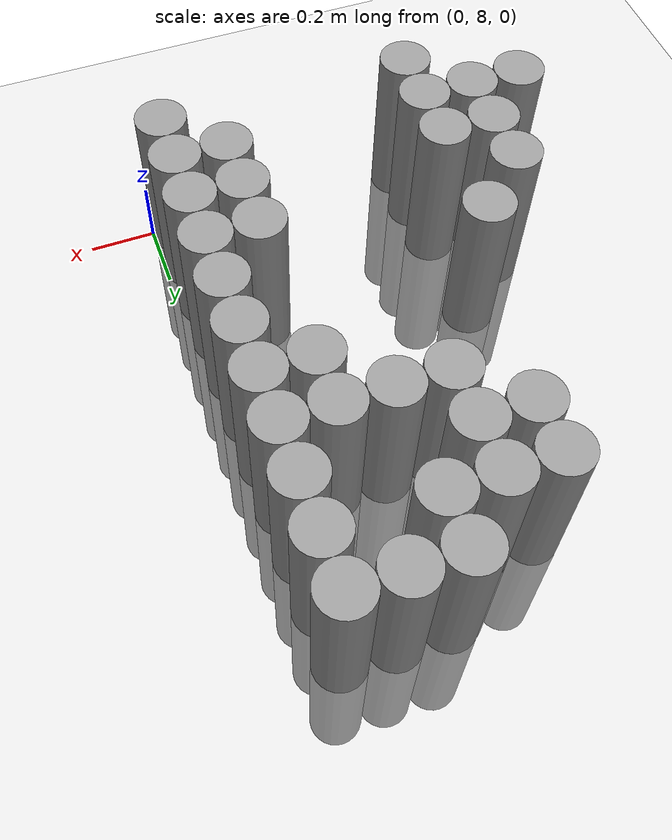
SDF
<sdf version="1.6">
 <world name="default">
  <model name="ground_plane">
   <static>1</static>
   <link name="link">
    <collision name="collision">
     <geometry><plane><normal>0 0 1</normal><size>100 100</size></plane></geometry>
     <surface><friction><ode><mu>100</mu><mu2>50</mu2></ode></friction></surface>
    </collision>
    <visual name="visual">
     <cast_shadows>0</cast_shadows>
     <geometry><plane><normal>0 0 1</normal><size>100 100</size></plane></geometry>
     <material>
      <script><uri>file://media/materials/scripts/gazebo.material</uri><name>Gazebo/Grey</name></script>
     </material>
    </visual>
   </link>
  </model>
  <model name="unit_cylinder_183">
   <pose>-1.125000 8.175000 0.000000 0.000000 0.000000 0.000000</pose>
   <link name="link">
    <inertial>
     <mass>1</mass>
     <inertia><ixx>0.145833</ixx><ixy>0</ixy><ixz>0</ixz><iyy>0.145833</iyy><iyz>0</iyz><izz>0.125</izz></inertia>
    </inertial>
    <collision name="collision">
     <geometry><cylinder><radius>0.075000</radius><length>1</length></cylinder></geometry>
    </collision>
    <visual name="visual">
     <geometry><cylinder><radius>0.075000</radius><length>1</length></cylinder></geometry>
     <material>
      <script><name>Gazebo/Grey</name><uri>file://media/materials/scripts/gazebo.material</uri></script>
     </material>
    </visual>
   </link>
  </model>
  <model name="unit_cylinder_188">
   <pose>-0.975000 8.175000 0.000000 0.000000 0.000000 0.000000</pose>
   <link name="link">
    <inertial>
     <mass>1</mass>
     <inertia><ixx>0.145833</ixx><ixy>0</ixy><ixz>0</ixz><iyy>0.145833</iyy><iyz>0</iyz><izz>0.125</izz></inertia>
    </inertial>
    <collision name="collision">
     <geometry><cylinder><radius>0.075000</radius><length>1</length></cylinder></geometry>
    </collision>
    <visual name="visual">
     <geometry><cylinder><radius>0.075000</radius><length>1</length></cylinder></geometry>
     <material>
      <script><name>Gazebo/Grey</name><uri>file://media/materials/scripts/gazebo.material</uri></script>
     </material>
    </visual>
   </link>
  </model>
  <model name="unit_cylinder_189">
   <pose>-0.975000 8.325000 0.000000 0.000000 0.000000 0.000000</pose>
   <link name="link">
    <inertial>
     <mass>1</mass>
     <inertia><ixx>0.145833</ixx><ixy>0</ixy><ixz>0</ixz><iyy>0.145833</iyy><iyz>0</iyz><izz>0.125</izz></inertia>
    </inertial>
    <collision name="collision">
     <geometry><cylinder><radius>0.075000</radius><length>1</length></cylinder></geometry>
    </collision>
    <visual name="visual">
     <geometry><cylinder><radius>0.075000</radius><length>1</length></cylinder></geometry>
     <material>
      <script><name>Gazebo/Grey</name><uri>file://media/materials/scripts/gazebo.material</uri></script>
     </material>
    </visual>
   </link>
  </model>
  <model name="unit_cylinder_190">
   <pose>-0.975000 8.475000 0.000000 0.000000 0.000000 0.000000</pose>
   <link name="link">
    <inertial>
     <mass>1</mass>
     <inertia><ixx>0.145833</ixx><ixy>0</ixy><ixz>0</ixz><iyy>0.145833</iyy><iyz>0</iyz><izz>0.125</izz></inertia>
    </inertial>
    <collision name="collision">
     <geometry><cylinder><radius>0.075000</radius><length>1</length></cylinder></geometry>
    </collision>
    <visual name="visual">
     <geometry><cylinder><radius>0.075000</radius><length>1</length></cylinder></geometry>
     <material>
      <script><name>Gazebo/Grey</name><uri>file://media/materials/scripts/gazebo.material</uri></script>
     </material>
    </visual>
   </link>
  </model>
  <model name="unit_cylinder_194">
   <pose>-0.825000 8.025000 0.000000 0.000000 0.000000 0.000000</pose>
   <link name="link">
    <inertial>
     <mass>1</mass>
     <inertia><ixx>0.145833</ixx><ixy>0</ixy><ixz>0</ixz><iyy>0.145833</iyy><iyz>0</iyz><izz>0.125</izz></inertia>
    </inertial>
    <collision name="collision">
     <geometry><cylinder><radius>0.075000</radius><length>1</length></cylinder></geometry>
    </collision>
    <visual name="visual">
     <geometry><cylinder><radius>0.075000</radius><length>1</length></cylinder></geometry>
     <material>
      <script><name>Gazebo/Grey</name><uri>file://media/materials/scripts/gazebo.material</uri></script>
     </material>
    </visual>
   </link>
  </model>
  <model name="unit_cylinder_195">
   <pose>-0.825000 8.175000 0.000000 0.000000 0.000000 0.000000</pose>
   <link name="link">
    <inertial>
     <mass>1</mass>
     <inertia><ixx>0.145833</ixx><ixy>0</ixy><ixz>0</ixz><iyy>0.145833</iyy><iyz>0</iyz><izz>0.125</izz></inertia>
    </inertial>
    <collision name="collision">
     <geometry><cylinder><radius>0.075000</radius><length>1</length></cylinder></geometry>
    </collision>
    <visual name="visual">
     <geometry><cylinder><radius>0.075000</radius><length>1</length></cylinder></geometry>
     <material>
      <script><name>Gazebo/Grey</name><uri>file://media/materials/scripts/gazebo.material</uri></script>
     </material>
    </visual>
   </link>
  </model>
  <model name="unit_cylinder_196">
   <pose>-0.825000 8.325000 0.000000 0.000000 0.000000 0.000000</pose>
   <link name="link">
    <inertial>
     <mass>1</mass>
     <inertia><ixx>0.145833</ixx><ixy>0</ixy><ixz>0</ixz><iyy>0.145833</iyy><iyz>0</iyz><izz>0.125</izz></inertia>
    </inertial>
    <collision name="collision">
     <geometry><cylinder><radius>0.075000</radius><length>1</length></cylinder></geometry>
    </collision>
    <visual name="visual">
     <geometry><cylinder><radius>0.075000</radius><length>1</length></cylinder></geometry>
     <material>
      <script><name>Gazebo/Grey</name><uri>file://media/materials/scripts/gazebo.material</uri></script>
     </material>
    </visual>
   </link>
  </model>
  <model name="unit_cylinder_197">
   <pose>-0.825000 8.625000 0.000000 0.000000 0.000000 0.000000</pose>
   <link name="link">
    <inertial>
     <mass>1</mass>
     <inertia><ixx>0.145833</ixx><ixy>0</ixy><ixz>0</ixz><iyy>0.145833</iyy><iyz>0</iyz><izz>0.125</izz></inertia>
    </inertial>
    <collision name="collision">
     <geometry><cylinder><radius>0.075000</radius><length>1</length></cylinder></geometry>
    </collision>
    <visual name="visual">
     <geometry><cylinder><radius>0.075000</radius><length>1</length></cylinder></geometry>
     <material>
      <script><name>Gazebo/Grey</name><uri>file://media/materials/scripts/gazebo.material</uri></script>
     </material>
    </visual>
   </link>
  </model>
  <model name="unit_cylinder_200">
   <pose>-0.675000 9.225000 0.000000 0.000000 0.000000 0.000000</pose>
   <link name="link">
    <inertial>
     <mass>1</mass>
     <inertia><ixx>0.145833</ixx><ixy>0</ixy><ixz>0</ixz><iyy>0.145833</iyy><iyz>0</iyz><izz>0.125</izz></inertia>
    </inertial>
    <collision name="collision">
     <geometry><cylinder><radius>0.075000</radius><length>1</length></cylinder></geometry>
    </collision>
    <visual name="visual">
     <geometry><cylinder><radius>0.075000</radius><length>1</length></cylinder></geometry>
     <material>
      <script><name>Gazebo/Grey</name><uri>file://media/materials/scripts/gazebo.material</uri></script>
     </material>
    </visual>
   </link>
  </model>
  <model name="unit_cylinder_201">
   <pose>-0.675000 9.375000 0.000000 0.000000 0.000000 0.000000</pose>
   <link name="link">
    <inertial>
     <mass>1</mass>
     <inertia><ixx>0.145833</ixx><ixy>0</ixy><ixz>0</ixz><iyy>0.145833</iyy><iyz>0</iyz><izz>0.125</izz></inertia>
    </inertial>
    <collision name="collision">
     <geometry><cylinder><radius>0.075000</radius><length>1</length></cylinder></geometry>
    </collision>
    <visual name="visual">
     <geometry><cylinder><radius>0.075000</radius><length>1</length></cylinder></geometry>
     <material>
      <script><name>Gazebo/Grey</name><uri>file://media/materials/scripts/gazebo.material</uri></script>
     </material>
    </visual>
   </link>
  </model>
  <model name="unit_cylinder_204">
   <pose>-0.525000 9.075000 0.000000 0.000000 0.000000 0.000000</pose>
   <link name="link">
    <inertial>
     <mass>1</mass>
     <inertia><ixx>0.145833</ixx><ixy>0</ixy><ixz>0</ixz><iyy>0.145833</iyy><iyz>0</iyz><izz>0.125</izz></inertia>
    </inertial>
    <collision name="collision">
     <geometry><cylinder><radius>0.075000</radius><length>1</length></cylinder></geometry>
    </collision>
    <visual name="visual">
     <geometry><cylinder><radius>0.075000</radius><length>1</length></cylinder></geometry>
     <material>
      <script><name>Gazebo/Grey</name><uri>file://media/materials/scripts/gazebo.material</uri></script>
     </material>
    </visual>
   </link>
  </model>
  <model name="unit_cylinder_205">
   <pose>-0.525000 9.225000 0.000000 0.000000 0.000000 0.000000</pose>
   <link name="link">
    <inertial>
     <mass>1</mass>
     <inertia><ixx>0.145833</ixx><ixy>0</ixy><ixz>0</ixz><iyy>0.145833</iyy><iyz>0</iyz><izz>0.125</izz></inertia>
    </inertial>
    <collision name="collision">
     <geometry><cylinder><radius>0.075000</radius><length>1</length></cylinder></geometry>
    </collision>
    <visual name="visual">
     <geometry><cylinder><radius>0.075000</radius><length>1</length></cylinder></geometry>
     <material>
      <script><name>Gazebo/Grey</name><uri>file://media/materials/scripts/gazebo.material</uri></script>
     </material>
    </visual>
   </link>
  </model>
  <model name="unit_cylinder_206">
   <pose>-0.525000 9.375000 0.000000 0.000000 0.000000 0.000000</pose>
   <link name="link">
    <inertial>
     <mass>1</mass>
     <inertia><ixx>0.145833</ixx><ixy>0</ixy><ixz>0</ixz><iyy>0.145833</iyy><iyz>0</iyz><izz>0.125</izz></inertia>
    </inertial>
    <collision name="collision">
     <geometry><cylinder><radius>0.075000</radius><length>1</length></cylinder></geometry>
    </collision>
    <visual name="visual">
     <geometry><cylinder><radius>0.075000</radius><length>1</length></cylinder></geometry>
     <material>
      <script><name>Gazebo/Grey</name><uri>file://media/materials/scripts/gazebo.material</uri></script>
     </material>
    </visual>
   </link>
  </model>
  <model name="unit_cylinder_210">
   <pose>-0.375000 9.075000 0.000000 0.000000 0.000000 0.000000</pose>
   <link name="link">
    <inertial>
     <mass>1</mass>
     <inertia><ixx>0.145833</ixx><ixy>0</ixy><ixz>0</ixz><iyy>0.145833</iyy><iyz>0</iyz><izz>0.125</izz></inertia>
    </inertial>
    <collision name="collision">
     <geometry><cylinder><radius>0.075000</radius><length>1</length></cylinder></geometry>
    </collision>
    <visual name="visual">
     <geometry><cylinder><radius>0.075000</radius><length>1</length></cylinder></geometry>
     <material>
      <script><name>Gazebo/Grey</name><uri>file://media/materials/scripts/gazebo.material</uri></script>
     </material>
    </visual>
   </link>
  </model>
  <model name="unit_cylinder_211">
   <pose>-0.375000 9.375000 0.000000 0.000000 0.000000 0.000000</pose>
   <link name="link">
    <inertial>
     <mass>1</mass>
     <inertia><ixx>0.145833</ixx><ixy>0</ixy><ixz>0</ixz><iyy>0.145833</iyy><iyz>0</iyz><izz>0.125</izz></inertia>
    </inertial>
    <collision name="collision">
     <geometry><cylinder><radius>0.075000</radius><length>1</length></cylinder></geometry>
    </collision>
    <visual name="visual">
     <geometry><cylinder><radius>0.075000</radius><length>1</length></cylinder></geometry>
     <material>
      <script><name>Gazebo/Grey</name><uri>file://media/materials/scripts/gazebo.material</uri></script>
     </material>
    </visual>
   </link>
  </model>
  <model name="unit_cylinder_212">
   <pose>-0.375000 9.525000 0.000000 0.000000 0.000000 0.000000</pose>
   <link name="link">
    <inertial>
     <mass>1</mass>
     <inertia><ixx>0.145833</ixx><ixy>0</ixy><ixz>0</ixz><iyy>0.145833</iyy><iyz>0</iyz><izz>0.125</izz></inertia>
    </inertial>
    <collision name="collision">
     <geometry><cylinder><radius>0.075000</radius><length>1</length></cylinder></geometry>
    </collision>
    <visual name="visual">
     <geometry><cylinder><radius>0.075000</radius><length>1</length></cylinder></geometry>
     <material>
      <script><name>Gazebo/Grey</name><uri>file://media/materials/scripts/gazebo.material</uri></script>
     </material>
    </visual>
   </link>
  </model>
  <model name="unit_cylinder_224">
   <pose>-0.225000 8.175000 0.000000 0.000000 0.000000 0.000000</pose>
   <link name="link">
    <inertial>
     <mass>1</mass>
     <inertia><ixx>0.145833</ixx><ixy>0</ixy><ixz>0</ixz><iyy>0.145833</iyy><iyz>0</iyz><izz>0.125</izz></inertia>
    </inertial>
    <collision name="collision">
     <geometry><cylinder><radius>0.075000</radius><length>1</length></cylinder></geometry>
    </collision>
    <visual name="visual">
     <geometry><cylinder><radius>0.075000</radius><length>1</length></cylinder></geometry>
     <material>
      <script><name>Gazebo/Grey</name><uri>file://media/materials/scripts/gazebo.material</uri></script>
     </material>
    </visual>
   </link>
  </model>
  <model name="unit_cylinder_225">
   <pose>-0.225000 8.325000 0.000000 0.000000 0.000000 0.000000</pose>
   <link name="link">
    <inertial>
     <mass>1</mass>
     <inertia><ixx>0.145833</ixx><ixy>0</ixy><ixz>0</ixz><iyy>0.145833</iyy><iyz>0</iyz><izz>0.125</izz></inertia>
    </inertial>
    <collision name="collision">
     <geometry><cylinder><radius>0.075000</radius><length>1</length></cylinder></geometry>
    </collision>
    <visual name="visual">
     <geometry><cylinder><radius>0.075000</radius><length>1</length></cylinder></geometry>
     <material>
      <script><name>Gazebo/Grey</name><uri>file://media/materials/scripts/gazebo.material</uri></script>
     </material>
    </visual>
   </link>
  </model>
  <model name="unit_cylinder_226">
   <pose>-0.225000 8.475000 0.000000 0.000000 0.000000 0.000000</pose>
   <link name="link">
    <inertial>
     <mass>1</mass>
     <inertia><ixx>0.145833</ixx><ixy>0</ixy><ixz>0</ixz><iyy>0.145833</iyy><iyz>0</iyz><izz>0.125</izz></inertia>
    </inertial>
    <collision name="collision">
     <geometry><cylinder><radius>0.075000</radius><length>1</length></cylinder></geometry>
    </collision>
    <visual name="visual">
     <geometry><cylinder><radius>0.075000</radius><length>1</length></cylinder></geometry>
     <material>
      <script><name>Gazebo/Grey</name><uri>file://media/materials/scripts/gazebo.material</uri></script>
     </material>
    </visual>
   </link>
  </model>
  <model name="unit_cylinder_227">
   <pose>-0.225000 8.925000 0.000000 0.000000 0.000000 0.000000</pose>
   <link name="link">
    <inertial>
     <mass>1</mass>
     <inertia><ixx>0.145833</ixx><ixy>0</ixy><ixz>0</ixz><iyy>0.145833</iyy><iyz>0</iyz><izz>0.125</izz></inertia>
    </inertial>
    <collision name="collision">
     <geometry><cylinder><radius>0.075000</radius><length>1</length></cylinder></geometry>
    </collision>
    <visual name="visual">
     <geometry><cylinder><radius>0.075000</radius><length>1</length></cylinder></geometry>
     <material>
      <script><name>Gazebo/Grey</name><uri>file://media/materials/scripts/gazebo.material</uri></script>
     </material>
    </visual>
   </link>
  </model>
  <model name="unit_cylinder_228">
   <pose>-0.225000 9.075000 0.000000 0.000000 0.000000 0.000000</pose>
   <link name="link">
    <inertial>
     <mass>1</mass>
     <inertia><ixx>0.145833</ixx><ixy>0</ixy><ixz>0</ixz><iyy>0.145833</iyy><iyz>0</iyz><izz>0.125</izz></inertia>
    </inertial>
    <collision name="collision">
     <geometry><cylinder><radius>0.075000</radius><length>1</length></cylinder></geometry>
    </collision>
    <visual name="visual">
     <geometry><cylinder><radius>0.075000</radius><length>1</length></cylinder></geometry>
     <material>
      <script><name>Gazebo/Grey</name><uri>file://media/materials/scripts/gazebo.material</uri></script>
     </material>
    </visual>
   </link>
  </model>
  <model name="unit_cylinder_229">
   <pose>-0.225000 9.525000 0.000000 0.000000 0.000000 0.000000</pose>
   <link name="link">
    <inertial>
     <mass>1</mass>
     <inertia><ixx>0.145833</ixx><ixy>0</ixy><ixz>0</ixz><iyy>0.145833</iyy><iyz>0</iyz><izz>0.125</izz></inertia>
    </inertial>
    <collision name="collision">
     <geometry><cylinder><radius>0.075000</radius><length>1</length></cylinder></geometry>
    </collision>
    <visual name="visual">
     <geometry><cylinder><radius>0.075000</radius><length>1</length></cylinder></geometry>
     <material>
      <script><name>Gazebo/Grey</name><uri>file://media/materials/scripts/gazebo.material</uri></script>
     </material>
    </visual>
   </link>
  </model>
  <model name="unit_cylinder_249">
   <pose>-0.075000 8.025000 0.000000 0.000000 0.000000 0.000000</pose>
   <link name="link">
    <inertial>
     <mass>1</mass>
     <inertia><ixx>0.145833</ixx><ixy>0</ixy><ixz>0</ixz><iyy>0.145833</iyy><iyz>0</iyz><izz>0.125</izz></inertia>
    </inertial>
    <collision name="collision">
     <geometry><cylinder><radius>0.075000</radius><length>1</length></cylinder></geometry>
    </collision>
    <visual name="visual">
     <geometry><cylinder><radius>0.075000</radius><length>1</length></cylinder></geometry>
     <material>
      <script><name>Gazebo/Grey</name><uri>file://media/materials/scripts/gazebo.material</uri></script>
     </material>
    </visual>
   </link>
  </model>
  <model name="unit_cylinder_250">
   <pose>-0.075000 8.175000 0.000000 0.000000 0.000000 0.000000</pose>
   <link name="link">
    <inertial>
     <mass>1</mass>
     <inertia><ixx>0.145833</ixx><ixy>0</ixy><ixz>0</ixz><iyy>0.145833</iyy><iyz>0</iyz><izz>0.125</izz></inertia>
    </inertial>
    <collision name="collision">
     <geometry><cylinder><radius>0.075000</radius><length>1</length></cylinder></geometry>
    </collision>
    <visual name="visual">
     <geometry><cylinder><radius>0.075000</radius><length>1</length></cylinder></geometry>
     <material>
      <script><name>Gazebo/Grey</name><uri>file://media/materials/scripts/gazebo.material</uri></script>
     </material>
    </visual>
   </link>
  </model>
  <model name="unit_cylinder_251">
   <pose>-0.075000 8.325000 0.000000 0.000000 0.000000 0.000000</pose>
   <link name="link">
    <inertial>
     <mass>1</mass>
     <inertia><ixx>0.145833</ixx><ixy>0</ixy><ixz>0</ixz><iyy>0.145833</iyy><iyz>0</iyz><izz>0.125</izz></inertia>
    </inertial>
    <collision name="collision">
     <geometry><cylinder><radius>0.075000</radius><length>1</length></cylinder></geometry>
    </collision>
    <visual name="visual">
     <geometry><cylinder><radius>0.075000</radius><length>1</length></cylinder></geometry>
     <material>
      <script><name>Gazebo/Grey</name><uri>file://media/materials/scripts/gazebo.material</uri></script>
     </material>
    </visual>
   </link>
  </model>
  <model name="unit_cylinder_252">
   <pose>-0.075000 8.475000 0.000000 0.000000 0.000000 0.000000</pose>
   <link name="link">
    <inertial>
     <mass>1</mass>
     <inertia><ixx>0.145833</ixx><ixy>0</ixy><ixz>0</ixz><iyy>0.145833</iyy><iyz>0</iyz><izz>0.125</izz></inertia>
    </inertial>
    <collision name="collision">
     <geometry><cylinder><radius>0.075000</radius><length>1</length></cylinder></geometry>
    </collision>
    <visual name="visual">
     <geometry><cylinder><radius>0.075000</radius><length>1</length></cylinder></geometry>
     <material>
      <script><name>Gazebo/Grey</name><uri>file://media/materials/scripts/gazebo.material</uri></script>
     </material>
    </visual>
   </link>
  </model>
  <model name="unit_cylinder_253">
   <pose>-0.075000 8.625000 0.000000 0.000000 0.000000 0.000000</pose>
   <link name="link">
    <inertial>
     <mass>1</mass>
     <inertia><ixx>0.145833</ixx><ixy>0</ixy><ixz>0</ixz><iyy>0.145833</iyy><iyz>0</iyz><izz>0.125</izz></inertia>
    </inertial>
    <collision name="collision">
     <geometry><cylinder><radius>0.075000</radius><length>1</length></cylinder></geometry>
    </collision>
    <visual name="visual">
     <geometry><cylinder><radius>0.075000</radius><length>1</length></cylinder></geometry>
     <material>
      <script><name>Gazebo/Grey</name><uri>file://media/materials/scripts/gazebo.material</uri></script>
     </material>
    </visual>
   </link>
  </model>
  <model name="unit_cylinder_254">
   <pose>-0.075000 8.775000 0.000000 0.000000 0.000000 0.000000</pose>
   <link name="link">
    <inertial>
     <mass>1</mass>
     <inertia><ixx>0.145833</ixx><ixy>0</ixy><ixz>0</ixz><iyy>0.145833</iyy><iyz>0</iyz><izz>0.125</izz></inertia>
    </inertial>
    <collision name="collision">
     <geometry><cylinder><radius>0.075000</radius><length>1</length></cylinder></geometry>
    </collision>
    <visual name="visual">
     <geometry><cylinder><radius>0.075000</radius><length>1</length></cylinder></geometry>
     <material>
      <script><name>Gazebo/Grey</name><uri>file://media/materials/scripts/gazebo.material</uri></script>
     </material>
    </visual>
   </link>
  </model>
  <model name="unit_cylinder_255">
   <pose>-0.075000 8.925000 0.000000 0.000000 0.000000 0.000000</pose>
   <link name="link">
    <inertial>
     <mass>1</mass>
     <inertia><ixx>0.145833</ixx><ixy>0</ixy><ixz>0</ixz><iyy>0.145833</iyy><iyz>0</iyz><izz>0.125</izz></inertia>
    </inertial>
    <collision name="collision">
     <geometry><cylinder><radius>0.075000</radius><length>1</length></cylinder></geometry>
    </collision>
    <visual name="visual">
     <geometry><cylinder><radius>0.075000</radius><length>1</length></cylinder></geometry>
     <material>
      <script><name>Gazebo/Grey</name><uri>file://media/materials/scripts/gazebo.material</uri></script>
     </material>
    </visual>
   </link>
  </model>
  <model name="unit_cylinder_256">
   <pose>-0.075000 9.075000 0.000000 0.000000 0.000000 0.000000</pose>
   <link name="link">
    <inertial>
     <mass>1</mass>
     <inertia><ixx>0.145833</ixx><ixy>0</ixy><ixz>0</ixz><iyy>0.145833</iyy><iyz>0</iyz><izz>0.125</izz></inertia>
    </inertial>
    <collision name="collision">
     <geometry><cylinder><radius>0.075000</radius><length>1</length></cylinder></geometry>
    </collision>
    <visual name="visual">
     <geometry><cylinder><radius>0.075000</radius><length>1</length></cylinder></geometry>
     <material>
      <script><name>Gazebo/Grey</name><uri>file://media/materials/scripts/gazebo.material</uri></script>
     </material>
    </visual>
   </link>
  </model>
  <model name="unit_cylinder_257">
   <pose>-0.075000 9.225000 0.000000 0.000000 0.000000 0.000000</pose>
   <link name="link">
    <inertial>
     <mass>1</mass>
     <inertia><ixx>0.145833</ixx><ixy>0</ixy><ixz>0</ixz><iyy>0.145833</iyy><iyz>0</iyz><izz>0.125</izz></inertia>
    </inertial>
    <collision name="collision">
     <geometry><cylinder><radius>0.075000</radius><length>1</length></cylinder></geometry>
    </collision>
    <visual name="visual">
     <geometry><cylinder><radius>0.075000</radius><length>1</length></cylinder></geometry>
     <material>
      <script><name>Gazebo/Grey</name><uri>file://media/materials/scripts/gazebo.material</uri></script>
     </material>
    </visual>
   </link>
  </model>
  <model name="unit_cylinder_258">
   <pose>-0.075000 9.375000 0.000000 0.000000 0.000000 0.000000</pose>
   <link name="link">
    <inertial>
     <mass>1</mass>
     <inertia><ixx>0.145833</ixx><ixy>0</ixy><ixz>0</ixz><iyy>0.145833</iyy><iyz>0</iyz><izz>0.125</izz></inertia>
    </inertial>
    <collision name="collision">
     <geometry><cylinder><radius>0.075000</radius><length>1</length></cylinder></geometry>
    </collision>
    <visual name="visual">
     <geometry><cylinder><radius>0.075000</radius><length>1</length></cylinder></geometry>
     <material>
      <script><name>Gazebo/Grey</name><uri>file://media/materials/scripts/gazebo.material</uri></script>
     </material>
    </visual>
   </link>
  </model>
  <model name="unit_cylinder_259">
   <pose>-0.075000 9.525000 0.000000 0.000000 0.000000 0.000000</pose>
   <link name="link">
    <inertial>
     <mass>1</mass>
     <inertia><ixx>0.145833</ixx><ixy>0</ixy><ixz>0</ixz><iyy>0.145833</iyy><iyz>0</iyz><izz>0.125</izz></inertia>
    </inertial>
    <collision name="collision">
     <geometry><cylinder><radius>0.075000</radius><length>1</length></cylinder></geometry>
    </collision>
    <visual name="visual">
     <geometry><cylinder><radius>0.075000</radius><length>1</length></cylinder></geometry>
     <material>
      <script><name>Gazebo/Grey</name><uri>file://media/materials/scripts/gazebo.material</uri></script>
     </material>
    </visual>
   </link>
  </model>
 </world>
</sdf>
